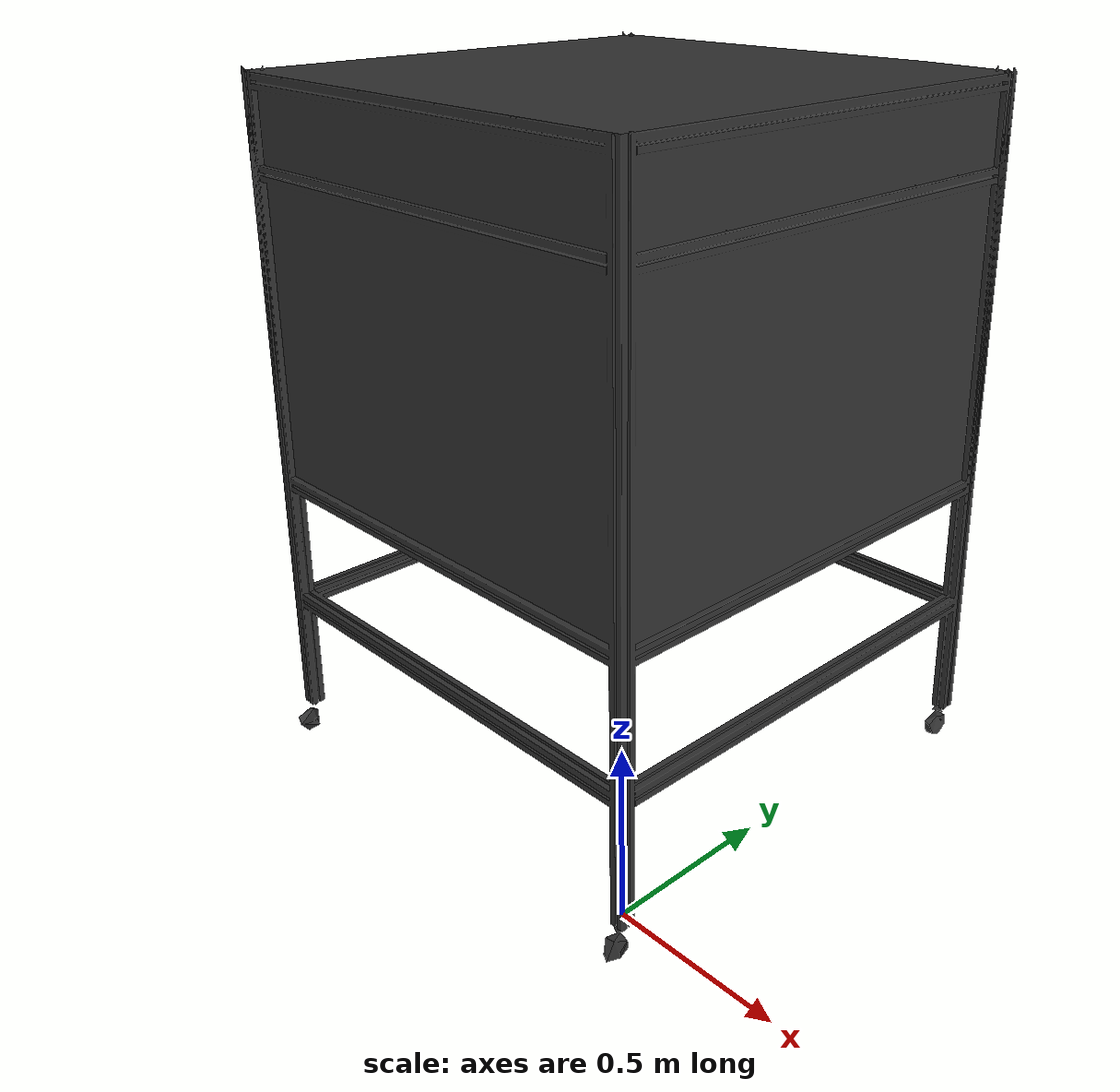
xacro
<?xml version="1.0"?>

<robot xmlns:xacro="http://www.ros.org/wiki/xacro" name="eva_arm">

<!-- include the xyplatform -->
<xacro:include filename="$(find xy_platform_control)/urdf/xy_plotter.xacro" />

    <!-- ros_control plugin -->
    <gazebo>
        <plugin filename="libgazebo_ros_control.so" name="gazebo_ros_control">
            <robotNamespace>/eva</robotNamespace>
            <robotSimType>gazebo_ros_control/DefaultRobotHWSim</robotSimType>
        </plugin>
    </gazebo>

    <!-- Gazebo-specific material settings to force transparency of the box in Gazebo-->
    <gazebo reference="box">
      <material>Gazebo/GreyTransparent</material>
    </gazebo>

    <!-- all the links of the robotic arm -->
    <gazebo reference="link1">
        <mu1>0.5</mu1>
        <mu2>0.5</mu2>
        <selfCollide>true</selfCollide>
    </gazebo>
    <gazebo reference="link2">
        <mu1>0.5</mu1>
        <mu2>0.5</mu2>
        <selfCollide>true</selfCollide>
    </gazebo>
    <gazebo reference="link3">
        <mu1>0.5</mu1>
        <mu2>0.5</mu2>
        <selfCollide>true</selfCollide>
    </gazebo>
    <gazebo reference="link4">
        <mu1>0.5</mu1>
        <mu2>0.5</mu2>
        <selfCollide>true</selfCollide>
    </gazebo>
    <gazebo reference="link5">
        <mu1>0.5</mu1>
        <mu2>0.5</mu2>
        <selfCollide>true</selfCollide>
    </gazebo>
    <gazebo reference="link6">
        <mu1>0.5</mu1>
        <mu2>0.5</mu2>
        <selfCollide>true</selfCollide>
    </gazebo>

    <!-- controllers for the robotic arm -->
    <transmission name="trans_joint01">
        <type>transmission_interface/SimpleTransmission</type>
        <joint name="joint01">
            <hardwareInterface>hardware_interface/EffortJointInterface</hardwareInterface>
        </joint>
        <actuator name="joint01_motor">
            <hardwareInterface>hardware_interface/EffortJointInterface</hardwareInterface>
            <mechanicalReduction>1</mechanicalReduction>
        </actuator>
    </transmission>
    <transmission name="trans_joint12">
        <type>transmission_interface/SimpleTransmission</type>
        <joint name="joint12">
            <hardwareInterface>hardware_interface/EffortJointInterface</hardwareInterface>
        </joint>
        <actuator name="joint12_motor">
            <hardwareInterface>hardware_interface/EffortJointInterface</hardwareInterface>
            <mechanicalReduction>1</mechanicalReduction>
        </actuator>
    </transmission>
    <transmission name="trans_joint23">
        <type>transmission_interface/SimpleTransmission</type>
        <joint name="joint23">
            <hardwareInterface>hardware_interface/EffortJointInterface</hardwareInterface>
        </joint>
        <actuator name="joint23_motor">
            <hardwareInterface>hardware_interface/EffortJointInterface</hardwareInterface>
            <mechanicalReduction>1</mechanicalReduction>
        </actuator>
    </transmission>
    <transmission name="trans_joint34">
        <type>transmission_interface/SimpleTransmission</type>
        <joint name="joint34">
            <hardwareInterface>hardware_interface/EffortJointInterface</hardwareInterface>
        </joint>
        <actuator name="joint34_motor">
            <hardwareInterface>hardware_interface/EffortJointInterface</hardwareInterface>
            <mechanicalReduction>1</mechanicalReduction>
        </actuator>
    </transmission>
    <transmission name="trans_joint45">
        <type>transmission_interface/SimpleTransmission</type>
        <joint name="joint45">
            <hardwareInterface>hardware_interface/EffortJointInterface</hardwareInterface>
        </joint>
        <actuator name="joint45_motor">
            <hardwareInterface>hardware_interface/EffortJointInterface</hardwareInterface>
            <mechanicalReduction>1</mechanicalReduction>
        </actuator>
    </transmission>
    <transmission name="trans_joint56">
        <type>transmission_interface/SimpleTransmission</type>
        <joint name="joint56">
            <hardwareInterface>hardware_interface/EffortJointInterface</hardwareInterface>
        </joint>
        <actuator name="joint56_motor">
            <hardwareInterface>hardware_interface/EffortJointInterface</hardwareInterface>
            <mechanicalReduction>1</mechanicalReduction>
        </actuator>
    </transmission>

    <!-- World link -->
    <link name="world"/>

    <link name="box">
      <visual>
        <origin rpy="1.5707963267948966 0 0" xyz="0 0 0"/>
        <geometry>
          <mesh filename="package://eva_description/meshes/box.dae"/>
        </geometry>
        <material name="semi_transparent_material">
          <color rgba="0.2 0.2 0.2 0"/>
        </material>
      </visual>
      <inertial>
        <origin rpy="1.5707963267948966 0 0" xyz="0 0 0"/>
        <mass value="1.0"/>
        <inertia ixx="0.01" ixy="0.0" ixz="0.0" iyy="0.01" iyz="0.0" izz="0.01"/>
      </inertial>
    </link>

    <joint name="connect_world_and_box" type="fixed">
      <child link="box"/>
      <parent link="world"/>
      <origin rpy="0 0 0" xyz="0 0 0"/>
    </joint>

  <!-- Table link:
  -    It could be used instead of the box for visualization in rviz
  -->

  <!-- Table link properties ends here -->

    <!-- All the links and joints of the Robotic Arm -->
    <link name="base_link">
      <gravity>0</gravity>
      <inertial>
        <origin rpy="0 0 0" xyz="-0.00079256 0.072247 -4.2906E-06" />
        <mass value="2.2163" />
        <inertia ixx="0.0065308" ixy="-2.9126E-05" ixz="-1.2386E-06" iyy="0.0051738" iyz="-5.4387E-07" izz="0.0065939" />
      </inertial>
      <visual>
        <origin rpy="0 0 0" xyz="0 0 0" />
        <geometry>
          <mesh filename="package://eva_description/meshes/base_link.STL" />
        </geometry>
        <material name="">
          <color rgba="0.79216 0.81961 0.93333 1" />
        </material>
      </visual>
      <collision>
        <origin rpy="0 0 0" xyz="0 0 0" />
        <geometry>
          <mesh filename="package://eva_description/meshes/base_link.STL" />
        </geometry>
      </collision>
    </link>

    <joint name="box_to_base_link" type="fixed">
      <origin rpy="0 0 0" xyz="-0.3 0.7 0.8" />
       <parent link="box" />  <!-- change "box" to "table_link" if not using the box-->
      <child link="base_link" />
    </joint>

    <link name="link1">
        <gravity>0</gravity>
        <inertial>
            <origin rpy="0 0 0" xyz="0.033792 0.10158 0.028608" />
            <mass value="1.3679" />
            <inertia ixx="0.0024595" ixy="-0.0008869" ixz="-0.00013245" iyy="0.0021904" iyz="-0.00017806" izz="0.00385" />
        </inertial>
        <visual>
            <origin rpy="0 0 0" xyz="0 0 0" />
            <geometry>
                <mesh filename="package://eva_description/meshes/link1.STL" />
            </geometry>
            <material name="">
                <color rgba="0.79216 0.81961 0.93333 1" />
            </material>
        </visual>
        <collision>
            <origin rpy="0 0 0" xyz="0 0 0" />
            <geometry>
                <mesh filename="package://eva_description/meshes/link1.STL" />
            </geometry>
        </collision>
    </link>
    <joint name="joint01" type="revolute">
        <origin rpy="1.5708 0 0" xyz="0 0 0.151" />
        <parent link="base_link" />
        <child link="link1" />
        <axis xyz="0 1 0" />
        <limit effort="100" lower="-3.12414" upper="3.12414" velocity="2.16" />
        <dynamics damping="0.8" friction="10" />
    </joint>

    <link name="link2">
        <gravity>0</gravity>
        <inertial>
            <origin rpy="0 0 0" xyz="-0.011054 0.095532 -0.041105" />
            <mass value="2.1464" />
            <inertia ixx="0.019567" ixy="0.00037463" ixz="0.00015985" iyy="0.0033754" iyz="-7.8572E-05" izz="0.021425" />
        </inertial>
        <visual>
            <origin rpy="0 0 0" xyz="0 0 0" />
            <geometry>
                <mesh filename="package://eva_description/meshes/link2.STL" />
            </geometry>
            <material name="">
                <color rgba="0.79216 0.81961 0.93333 1" />
            </material>
        </visual>
        <collision>
            <origin rpy="0 0 0" xyz="0 0 0" />
            <geometry>
                <mesh filename="package://eva_description/meshes/link2.STL" />
            </geometry>
        </collision>
    </link>
    <joint name="joint12" type="revolute">
        <origin rpy="0 0 0" xyz="0.056 0.1323 0" />
        <parent link="link1" />
        <child link="link2" />
        <axis xyz="0 0 1" />
        <limit effort="150" lower="-2.70526" upper="1.22173" velocity="1.0" />
        <dynamics damping="0.8" friction="10" />
    </joint>

    <link name="link3">
        <gravity>0</gravity>
        <inertial>
            <origin rpy="0 0 0" xyz="-0.017599 0.021043 0.028835" />
            <mass value="1.0412" />
            <inertia ixx="0.0014019" ixy="0.0004906" ixz="-9.7827E-05" iyy="0.0013971" iyz="0.00010907" izz="0.0022277" />
        </inertial>
        <visual>
            <origin rpy="0 0 0" xyz="0 0 0" />
            <geometry>
                <mesh filename="package://eva_description/meshes/link3.STL" />
            </geometry>
            <material name="">
                <color rgba="0.79216 0.81961 0.93333 1" />
            </material>
        </visual>
        <collision>
            <origin rpy="0 0 0" xyz="0 0 0" />
            <geometry>
                <mesh filename="package://eva_description/meshes/link3.STL" />
            </geometry>
        </collision>
    </link>
    <joint name="joint23" type="revolute">
        <origin rpy="0 0 0" xyz="0 0.205 0" />
        <parent link="link2" />
        <child link="link3" />
        <axis xyz="0 0 1" />
        <limit effort="100" lower="-2.79253" upper="0.785398" velocity="1" />
        <dynamics damping="0.8" friction="10" />
    </joint>

    <link name="link4">
        <gravity>0</gravity>
        <inertial>
            <origin rpy="0 0 0" xyz="6.3485E-05 0.082453 -0.0083688" />
            <mass value="1.2151" />
            <inertia ixx="0.0030376" ixy="-7.1559E-06" ixz="8.224E-07" iyy="0.0010632" iyz="0.00042179" izz="0.0034635" />
        </inertial>
        <visual>
            <origin rpy="0 0 0" xyz="0 0 0" />
            <geometry>
                <mesh filename="package://eva_description/meshes/link4.STL" />
            </geometry>
            <material name="">
                <color rgba="0.79216 0.81961 0.93333 1" />
            </material>
        </visual>
        <collision>
            <origin rpy="0 0 0" xyz="0 0 0" />
            <geometry>
                <mesh filename="package://eva_description/meshes/link4.STL" />
            </geometry>
        </collision>
    </link>
    <joint name="joint34" type="revolute">
        <origin rpy="3.1416 0 3.1416" xyz="-0.056 0.09401 0" />
        <parent link="link3" />
        <child link="link4" />
        <axis xyz="0 1 0" />
        <limit effort="30" lower="-3.12414" upper="3.12414" velocity="1" />
        <dynamics damping="0.8" friction="10" />
    </joint>

    <link name="link5">
        <gravity>0</gravity>
        <inertial>
            <origin rpy="0 0 0" xyz="0.033633 0.0068289 0.0038977" />
            <mass value="1.1633" />
            <inertia ixx="0.0014093" ixy="-7.9912E-05" ixz="1.6075E-05" iyy="0.00064393" iyz="7.6612E-06" izz="0.0012682" />
        </inertial>
        <visual>
            <origin rpy="0 0 0" xyz="0 0 0" />
            <geometry>
                <mesh filename="package://eva_description/meshes/link5.STL" />
            </geometry>
            <material name="">
                <color rgba="0.79216 0.81961 0.93333 1" />
            </material>
        </visual>
        <collision>
            <origin rpy="0 0 0" xyz="0 0 0" />
            <geometry>
                <mesh filename="package://eva_description/meshes/link5.STL" />
            </geometry>
        </collision>
    </link>
    <joint name="joint45" type="revolute">
        <origin rpy="0 0 0" xyz="0 0.1966 0" />
        <parent link="link4" />
        <child link="link5" />
        <axis xyz="0 0 1" />
        <limit effort="45" lower="-0.174533" upper="2.70526" velocity="1" />
        <dynamics damping="0.8" friction="10" />
    </joint>

    <link name="link6">
        <gravity>0</gravity>
        <inertial>
            <origin rpy="0 0 0" xyz="0.00010738 0.012024 3.1104E-05" />
            <mass value="0.089988" />
            <inertia ixx="3.1549E-05" ixy="9.9188E-08" ixz="-3.6831E-08" iyy="5.6401E-05" iyz="-1.5979E-09" izz="3.1789E-05" />
        </inertial>
        <visual>
            <origin rpy="0 0 0" xyz="0 0 0" />
            <geometry>
                <mesh filename="package://eva_description/meshes/link6.STL" />
            </geometry>
            <material name="">
                <color rgba="0.79216 0.81961 0.93333 1" />
            </material>
        </visual>
        <collision>
            <origin rpy="0 0 0" xyz="0 0 0" />
            <geometry>
                <mesh filename="package://eva_description/meshes/link6.STL" />
            </geometry>
        </collision>
    </link>
    <joint name="joint56" type="revolute">
        <origin rpy="0 0 0" xyz="0.065 0.0741 0" />
        <parent link="link5" />
        <child link="link6" />
        <axis xyz="0 1 0" />
        <limit effort="30" lower="-3.12414" upper="3.12414" velocity="1" />
        <dynamics damping="0.8" friction="10" />
    </joint>

    <link name="light_link">
        <gravity>0</gravity>
        <inertial>
            <origin rpy="0 0 0" xyz="0.000 0.0 0.0" />
            <mass value="0.089988" />
            <inertia ixx="3.1549E-05" ixy="9.9188E-08" ixz="-3.6831E-08" iyy="5.6401E-05" iyz="-1.5979E-09" izz="3.1789E-05" />
        </inertial>
        <visual>
            <origin rpy="0 0 0" xyz="0 0 0" />
            <geometry>
                <mesh filename="package://eva_description/meshes/Led_plate_assembly.STL" scale="0.001 0.001 0.001" />
            </geometry>
            <material name="">
                <color rgba="0.79216 0.81961 0.93333 1" />
            </material>
        </visual>
        <collision>
            <origin rpy="0 0 0" xyz="0 0 0" />
            <geometry>
                <mesh filename="package://eva_description/meshes/Led_plate_assembly.STL" scale="0.001 0.001 0.001" />
            </geometry>
        </collision>
    </link>
    <joint name="joint67" type="fixed">
        <origin rpy="-1.5707963267948966 0.0 0.0" xyz="-0.025 0.028 0.025" />
        <parent link="link6" />
        <child link="light_link" />
    </joint>

    <link name="ee_link" />
    <joint name="ee_link_joint" type="fixed">
        <origin rpy="-1.5707963267948966 3.141592653589793 0" xyz="0.11 0.025 0.06" />
        <parent link="light_link" />
        <child link="ee_link" />
    </joint>
</robot>

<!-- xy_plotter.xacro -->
<robot xmlns:xacro="http://www.ros.org/wiki/xacro" name="xy_plotter">

  <!-- Base Frame - Hollow Square -->
  <link name="boundary_link">
    <inertial>
      <mass value="10" />
      <inertia ixx="0.4" ixy="0.0" ixz="0.0" iyy="0.4" iyz="0.0" izz="0.2"/>
    </inertial>

    <!-- Front Boundary -->
    <visual>
      <origin xyz="0.0 0.30 0.0" rpy="0 0 0"/>
      <geometry>
        <box size="0.55 0.05 0.05"/>
      </geometry>
      <material name="grey">
        <color rgba="0.5 0.5 0.5 1"/>
      </material>
    </visual>

    <!-- Back Boundary -->
    <visual>
      <origin xyz="0.0 -0.30 0.0" rpy="0 0 0"/>
      <geometry>
        <box size="0.55 0.05 0.05"/>
      </geometry>
      <material name="grey">
        <color rgba="0.5 0.5 0.5 1"/>
      </material>
    </visual>

    <!-- Left Boundary -->
    <visual>
      <origin xyz="-0.30 0.0 0.0" rpy="0 0 0"/>
      <geometry>
        <box size="0.05 0.65 0.05"/>
      </geometry>
      <material name="grey">
        <color rgba="0.5 0.5 0.5 1"/>
      </material>
    </visual>

    <!-- Right Boundary -->
    <visual>
      <origin xyz="0.30 0.0 0.0" rpy="0 0 0"/>
      <geometry>
        <box size="0.05 0.65 0.05"/>
      </geometry>
      <material name="grey">
        <color rgba="0.5 0.5 0.5 1"/>
      </material>
    </visual>

    <!-- Add collision -->
  </link>

  <!-- Gazebo material for boundary_link -->
  <gazebo reference="boundary_link">
    <material>Gazebo/Grey</material>
  </gazebo>

  <joint name="connect_world_and_boundary_link" type="fixed">
    <child link="boundary_link"/>
    <parent link="world"/>
    <origin rpy="0 0 0" xyz="-0.9 0.7 0.95"/>
  </joint>

  <!-- Link #2 (Slider Link) -->
  <link name="slider_link">
    <inertial>
        <mass value="0.18" />
        <inertia ixx="0.0002835" ixy="0.0" ixz="0.0" iyy="0.0002835" iyz="0.0" izz="0.000324" />
    </inertial>
    <visual>
      <geometry>
        <box size="0.001 0.001 0.001" />
      </geometry>
      <material name="red">
        <color rgba="1 0 0 1"/>
      </material>
    </visual>
  </link>

  <!-- Link #3 (Slider Link) -->
  <link name="second_link">
    <inertial>
        <mass value="0.18" />
        <inertia ixx="0.0002835" ixy="0.0" ixz="0.0" iyy="0.0002835" iyz="0.0" izz="0.000324" />
    </inertial>
    <visual>
      <geometry>
        <box size="0.001 0.001 0.001" />
      </geometry>
      <material name="green">
        <color rgba="0 1 0 1"/>
      </material>
    </visual>
  </link>

  <!-- Link #4 (Plate) -->
  <link name="plate_link">
    <inertial>
        <mass value="0.5" />
        <inertia ixx="0.01" ixy="0.0" ixz="0.0" iyy="0.01" iyz="0.0" izz="0.01"/>
    </inertial>
    <visual>
      <geometry>
        <box size="0.2 0.2 0.02" />
      </geometry>
      <material name="gray">
        <color rgba="0.5 0.5 0.5 1"/>
      </material>
    </visual>
  </link>

  <!-- Joint for X-axis (Base to Slider) -->
  <joint name="base_to_slider_joint" type="prismatic">
    <parent link="boundary_link"/>
    <child link="slider_link"/>
    <axis xyz="1 0 0"/>
    <origin xyz="0.0 0.0 0.025" rpy="0.0 0.0 0.0"/>
    <limit lower="-0.25" upper="0.25" effort="100.0" velocity="1.0"/>
  </joint>

  <!-- Joint for Y-axis (Slider to Second Link) -->
  <joint name="slider_to_second_joint" type="prismatic">
    <parent link="slider_link"/>
    <child link="second_link"/>
    <axis xyz="0 1 0"/>
    <origin xyz="0.0 0.0 0" rpy="0.0 0.0 0.0"/>
    <limit lower="-0.25" upper="0.25" effort="100.0" velocity="1.0"/>
  </joint>

  <!-- Fixed Joint: Attach Plate to Second Link -->
  <joint name="second_to_plate_joint" type="fixed">
    <parent link="second_link"/>
    <child link="plate_link"/>
    <origin xyz="0.0 0.0 0.0" rpy="0.0 0.0 0.0"/>  <!-- Plate positioned slightly above the second link -->
  </joint>

  <!-- Gazebo ROS Control Plugin -->
  <gazebo>
    <plugin name="gazebo_ros_control" filename="libgazebo_ros_control.so">
      <robotNamespace>/xy_plotter</robotNamespace>
      <robotSimType>gazebo_ros_control/DefaultRobotHWSim</robotSimType>
      <legacyModeNS>true</legacyModeNS>
    </plugin>
  </gazebo>

  <!-- Transmission for X-axis -->
  <transmission name="base_to_slider_trans">
    <type>transmission_interface/SimpleTransmission</type>
    <actuator name="motor1">
        <mechanicalReduction>1</mechanicalReduction>
    </actuator>
    <joint name="base_to_slider_joint">
        <hardwareInterface>hardware_interface/PositionJointInterface</hardwareInterface>
    </joint>
  </transmission>

  <!-- Transmission for Y-axis -->
  <transmission name="slider_to_second_trans">
    <type>transmission_interface/SimpleTransmission</type>
    <actuator name="motor2">
        <mechanicalReduction>1</mechanicalReduction>
    </actuator>
    <joint name="slider_to_second_joint">
        <hardwareInterface>hardware_interface/PositionJointInterface</hardwareInterface>
    </joint>
  </transmission>

</robot>
